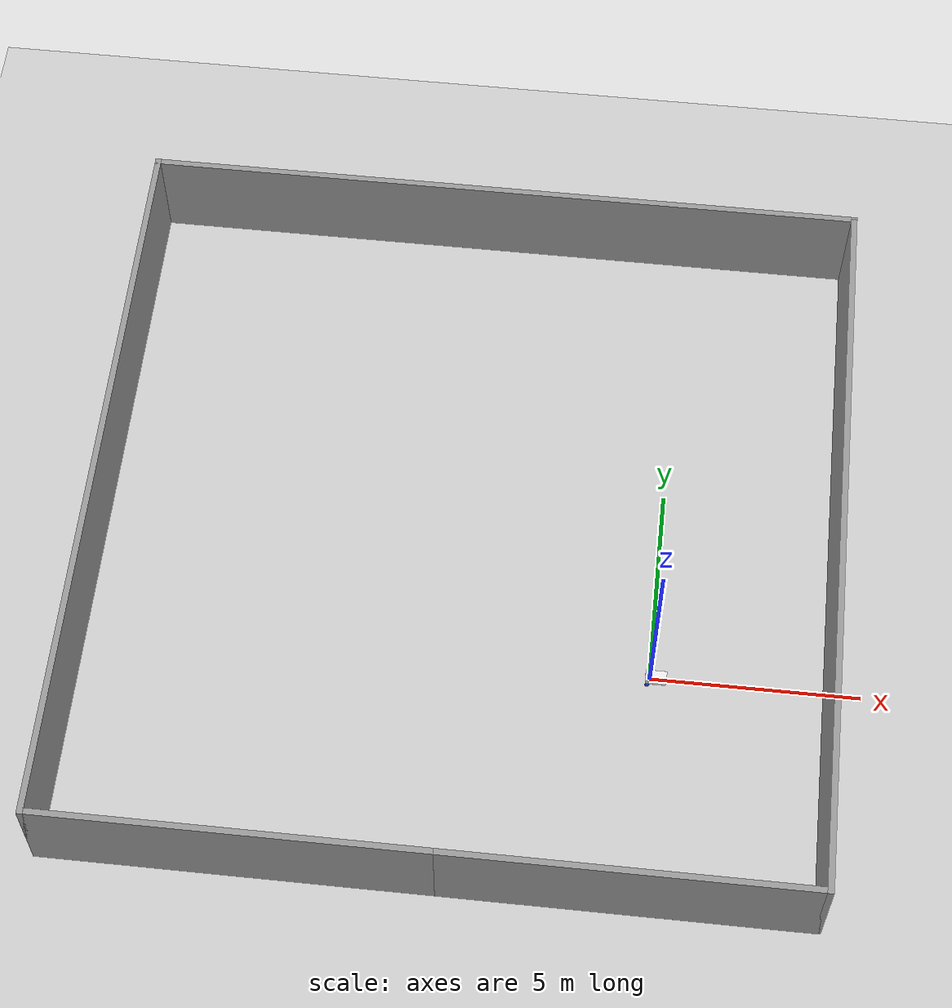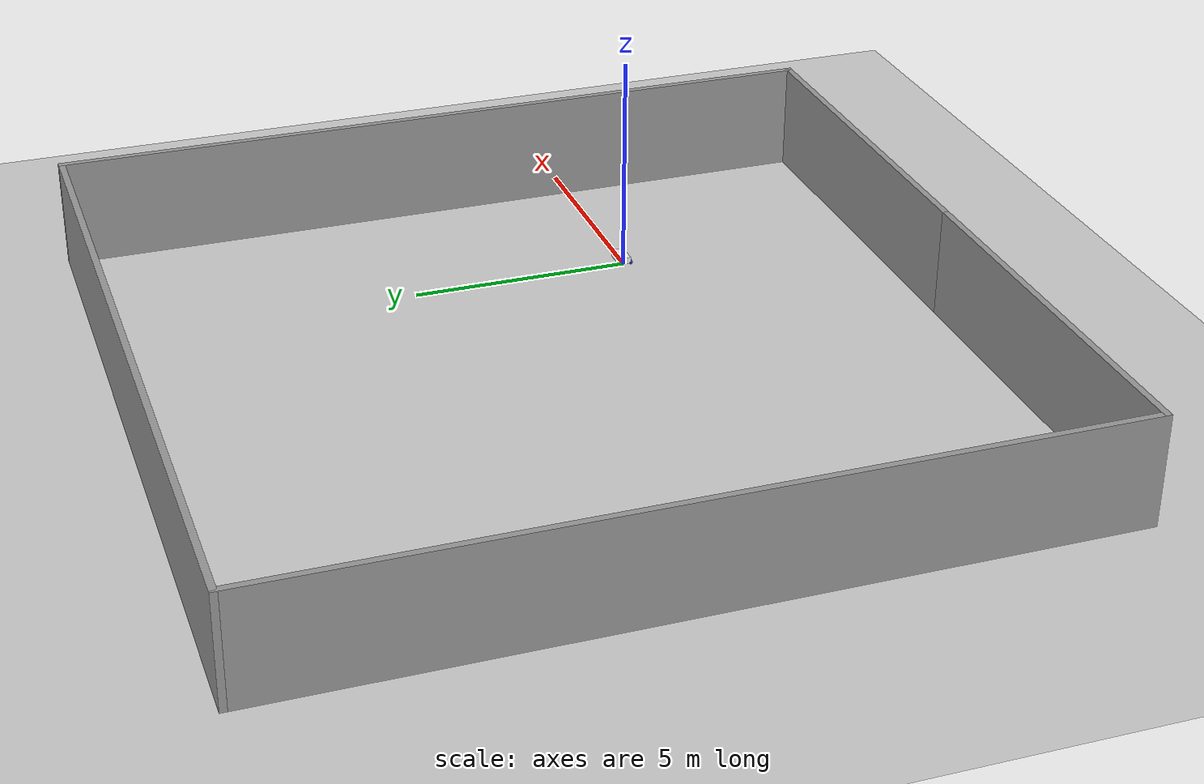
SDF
<sdf version="1.7">
 <world name="default">
  <light name="sun" type="directional">
   <pose>0 0 10 0 -0 0</pose>
   <diffuse>0.8 0.8 0.8 1</diffuse>
   <specular>0.2 0.2 0.2 1</specular>
   <attenuation>
    <range>1000</range>
    <constant>0.9</constant>
    <linear>0.01</linear>
    <quadratic>0.001</quadratic>
   </attenuation>
   <direction>-0.5 0.1 -0.9</direction>
   <spot><inner_angle>0</inner_angle><outer_angle>0</outer_angle><falloff>0</falloff></spot>
  </light>
  <model name="ground_plane">
   <static>1</static>
   <link name="link">
    <collision name="collision">
     <geometry><plane><normal>0 0 1</normal><size>100 100</size></plane></geometry>
     <surface>
      <contact><collide_bitmask>65535</collide_bitmask></contact>
      <friction><ode><mu>100</mu><mu2>50</mu2></ode></friction>
     </surface>
    </collision>
    <visual name="visual">
     <cast_shadows>0</cast_shadows>
     <geometry><plane><normal>0 0 1</normal><size>100 100</size></plane></geometry>
     <material>
      <script><uri>file://media/materials/scripts/gazebo.material</uri><name>Gazebo/Grey</name></script>
     </material>
    </visual>
   </link>
  </model>
  <gravity>0 0 -9.8</gravity>
  <magnetic_field>6e-06 2.3e-05 -4.2e-05</magnetic_field>
  <atmosphere type="adiabatic"/>
  <physics type="ode">
   <max_step_size>0.001</max_step_size>
   <real_time_factor>1</real_time_factor>
   <real_time_update_rate>1000</real_time_update_rate>
  </physics>
  <scene><ambient>0.4 0.4 0.4 1</ambient><background>0.7 0.7 0.7 1</background><shadows>1</shadows></scene>
  <audio><device>default</device></audio>
  <spherical_coordinates>
   <surface_model>EARTH_WGS84</surface_model>
   <latitude_deg>0</latitude_deg>
   <longitude_deg>0</longitude_deg>
   <elevation>0</elevation>
   <heading_deg>0</heading_deg>
  </spherical_coordinates>
  <model name="walls">
   <pose>-4.73553 3.15832 0 0 -0 0</pose>
   <link name="Wall_4">
    <collision name="Wall_4_Collision">
     <geometry><box><size>8.75 0.15 2.5</size></box></geometry>
     <pose>0 0 1.25 0 -0 0</pose>
    </collision>
    <visual name="Wall_4_Visual">
     <pose>0 0 1.25 0 -0 0</pose>
     <geometry><box><size>8.75 0.15 2.5</size></box></geometry>
     <material>
      <script><uri>file://media/materials/scripts/gazebo.material</uri><name>Gazebo/Grey</name></script>
      <ambient>1 1 1 1</ambient>
     </material>
     <meta><layer>0</layer></meta>
    </visual>
    <pose>4.625 -9.05 0 0 -0 0</pose>
   </link>
   <link name="Wall_5">
    <collision name="Wall_5_Collision">
     <geometry><box><size>18.25 0.15 2.5</size></box></geometry>
     <pose>0 0 1.25 0 -0 0</pose>
    </collision>
    <visual name="Wall_5_Visual">
     <pose>0 0 1.25 0 -0 0</pose>
     <geometry><box><size>18.25 0.15 2.5</size></box></geometry>
     <material>
      <script><uri>file://media/materials/scripts/gazebo.material</uri><name>Gazebo/Grey</name></script>
      <ambient>1 1 1 1</ambient>
     </material>
     <meta><layer>0</layer></meta>
    </visual>
    <pose>8.925 -0 0 0 -0 1.5708</pose>
   </link>
   <link name="Wall_6">
    <collision name="Wall_6_Collision">
     <geometry><box><size>18 0.15 2.5</size></box></geometry>
     <pose>0 0 1.25 0 -0 0</pose>
    </collision>
    <visual name="Wall_6_Visual">
     <pose>0 0 1.25 0 -0 0</pose>
     <geometry><box><size>18 0.15 2.5</size></box></geometry>
     <material>
      <script><uri>file://media/materials/scripts/gazebo.material</uri><name>Gazebo/Grey</name></script>
      <ambient>1 1 1 1</ambient>
     </material>
     <meta><layer>0</layer></meta>
    </visual>
    <pose>-0 9.05 0 0 -0 3.14159</pose>
   </link>
   <link name="Wall_7">
    <collision name="Wall_7_Collision">
     <geometry><box><size>18.25 0.15 2.5</size></box></geometry>
     <pose>0 0 1.25 0 -0 0</pose>
    </collision>
    <visual name="Wall_7_Visual">
     <pose>0 0 1.25 0 -0 0</pose>
     <geometry><box><size>18.25 0.15 2.5</size></box></geometry>
     <material>
      <script><uri>file://media/materials/scripts/gazebo.material</uri><name>Gazebo/Grey</name></script>
      <ambient>1 1 1 1</ambient>
     </material>
     <meta><layer>0</layer></meta>
    </visual>
    <pose>-8.925 -0 0 0 -0 -1.5708</pose>
   </link>
   <link name="Wall_8">
    <collision name="Wall_8_Collision">
     <geometry><box><size>9.25 0.15 2.5</size></box></geometry>
     <pose>0 0 1.25 0 -0 0</pose>
    </collision>
    <visual name="Wall_8_Visual">
     <pose>0 0 1.25 0 -0 0</pose>
     <geometry><box><size>9.25 0.15 2.5</size></box></geometry>
     <material>
      <script><uri>file://media/materials/scripts/gazebo.material</uri><name>Gazebo/Grey</name></script>
      <ambient>1 1 1 1</ambient>
     </material>
     <meta><layer>0</layer></meta>
    </visual>
    <pose>-4.375 -9.05 0 0 -0 0</pose>
   </link>
   <static>1</static>
  </model>
  <model name="my_bot">
   <link name="base_link">
    <inertial>
     <pose>0.159808 0 0.075481 0 -0 0</pose>
     <mass>5.2</mass>
     <inertia>
      <ixx>0.0486121</ixx>
      <ixy>0</ixy>
      <ixz>0.00647452</ixz>
      <iyy>0.160589</iyy>
      <iyz>0</iyz>
      <izz>0.187201</izz>
     </inertia>
    </inertial>
    <collision name="base_link_fixed_joint_lump__chassis_collision">
     <pose>0.15 0 0.075 0 -0 0</pose>
     <geometry><box><size>0.5 0.3 0.15</size></box></geometry>
    </collision>
    <collision name="base_link_fixed_joint_lump__caster_wheel_collision_1">
     <pose>0.35 0 0 0 -0 0</pose>
     <geometry><sphere><radius>0.05</radius></sphere></geometry>
     <surface><friction><ode><mu>0.001</mu><mu2>0.001</mu2></ode></friction></surface>
    </collision>
    <collision name="base_link_fixed_joint_lump__laser_frame_collision_2">
     <pose>0 0 0.175 0 -0 0</pose>
     <geometry><cylinder><length>0.04</length><radius>0.05</radius></cylinder></geometry>
    </collision>
    <visual name="base_link_fixed_joint_lump__chassis_visual">
     <pose>0.15 0 0.075 0 -0 0</pose>
     <geometry><box><size>0.5 0.3 0.15</size></box></geometry>
     <material>
      <script><name>Gazebo/White</name><uri>file://media/materials/scripts/gazebo.material</uri></script>
     </material>
    </visual>
    <visual name="base_link_fixed_joint_lump__caster_wheel_visual_1">
     <pose>0.35 0 0 0 -0 0</pose>
     <geometry><sphere><radius>0.05</radius></sphere></geometry>
     <material>
      <script><name>Gazebo/Black</name><uri>file://media/materials/scripts/gazebo.material</uri></script>
     </material>
    </visual>
    <visual name="base_link_fixed_joint_lump__laser_frame_visual_2">
     <pose>0 0 0.175 0 -0 0</pose>
     <geometry><cylinder><length>0.04</length><radius>0.05</radius></cylinder></geometry>
     <material>
      <script><name>Gazebo/Red</name><uri>file://media/materials/scripts/gazebo.material</uri></script>
     </material>
    </visual>
    <sensor name="laser" type="ray">
     <visualize>1</visualize>
     <update_rate>10</update_rate>
     <ray>
      <scan>
       <horizontal>
        <samples>360</samples>
        <min_angle>-2.09</min_angle>
        <max_angle>2.09</max_angle>
        <resolution>1</resolution>
       </horizontal>
       <vertical><samples>1</samples><min_angle>0</min_angle><max_angle>0</max_angle></vertical>
      </scan>
      <range><min>0.3</min><max>12</max></range>
     </ray>
     <plugin name="laser_controller" filename="libgazebo_ros_ray_sensor.so">
      <ros><argument>~/out:=scan</argument></ros>
      <output_type>sensor_msgs/LaserScan</output_type>
      <frame_name>laser_frame</frame_name>
     </plugin>
     <pose>0 0 0.175 0 -0 0</pose>
    </sensor>
   </link>
   <joint name="left_wheel_joint" type="revolute">
    <pose relative_to="base_link">-0.05 0.175 0 -1.5708 0 0</pose>
    <parent>base_link</parent>
    <child>left_wheel</child>
    <axis>
     <xyz>0 0 1</xyz>
     <limit><lower>-1e+16</lower><upper>1e+16</upper></limit>
     <dynamics><spring_reference>0</spring_reference><spring_stiffness>0</spring_stiffness></dynamics>
    </axis>
   </joint>
   <link name="left_wheel">
    <pose relative_to="left_wheel_joint">0 0 0 0 -0 0</pose>
    <inertial>
     <mass>0.1</mass>
     <inertia>
      <ixx>7.58333e-05</ixx>
      <ixy>0</ixy>
      <ixz>0</ixz>
      <iyy>7.58333e-05</iyy>
      <iyz>0</iyz>
      <izz>0.000125</izz>
     </inertia>
    </inertial>
    <collision name="left_wheel_collision">
     <geometry><cylinder><length>0.04</length><radius>0.05</radius></cylinder></geometry>
    </collision>
    <visual name="left_wheel_visual">
     <geometry><cylinder><length>0.04</length><radius>0.05</radius></cylinder></geometry>
     <material>
      <script><name>Gazebo/Blue</name><uri>file://media/materials/scripts/gazebo.material</uri></script>
     </material>
    </visual>
   </link>
   <joint name="right_wheel_joint" type="revolute">
    <pose relative_to="base_link">-0.05 -0.175 0 1.5708 -0 0</pose>
    <parent>base_link</parent>
    <child>right_wheel</child>
    <axis>
     <xyz>0 0 -1</xyz>
     <limit><lower>-1e+16</lower><upper>1e+16</upper></limit>
     <dynamics><spring_reference>0</spring_reference><spring_stiffness>0</spring_stiffness></dynamics>
    </axis>
   </joint>
   <link name="right_wheel">
    <pose relative_to="right_wheel_joint">0 0 0 0 -0 0</pose>
    <inertial>
     <mass>0.1</mass>
     <inertia>
      <ixx>7.58333e-05</ixx>
      <ixy>0</ixy>
      <ixz>0</ixz>
      <iyy>7.58333e-05</iyy>
      <iyz>0</iyz>
      <izz>0.000125</izz>
     </inertia>
    </inertial>
    <collision name="right_wheel_collision">
     <geometry><cylinder><length>0.04</length><radius>0.05</radius></cylinder></geometry>
    </collision>
    <visual name="right_wheel_visual">
     <geometry><cylinder><length>0.04</length><radius>0.05</radius></cylinder></geometry>
     <material>
      <script><name>Gazebo/Blue</name><uri>file://media/materials/scripts/gazebo.material</uri></script>
     </material>
    </visual>
   </link>
   <static>0</static>
   <plugin name="diff_drive" filename="libgazebo_ros_diff_drive.so">
    <left_joint>left_wheel_joint</left_joint>
    <right_joint>right_wheel_joint</right_joint>
    <wheel_separation>0.35</wheel_separation>
    <wheel_diameter>0.1</wheel_diameter>
    <max_wheel_torque>200</max_wheel_torque>
    <max_wheel_acceleration>10.0</max_wheel_acceleration>
    <odometry_frame>odom</odometry_frame>
    <robot_base_frame>base_link</robot_base_frame>
    <publish_odom>1</publish_odom>
    <publish_odom_tf>1</publish_odom_tf>
    <publish_wheel_tf>1</publish_wheel_tf>
   </plugin>
   <pose>-0.007462 -3.3e-05 0.050001 -0 2e-06 -0.000268</pose>
  </model>
 </world>
</sdf>
